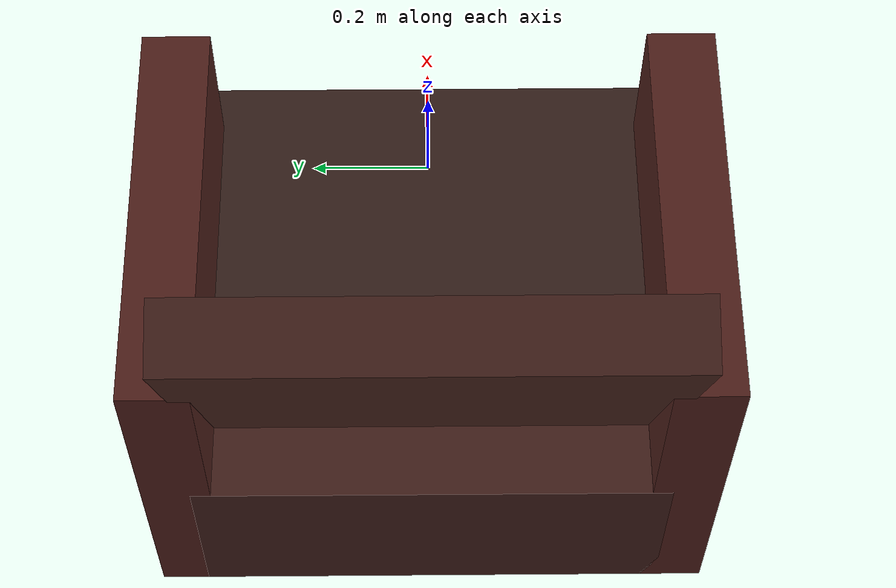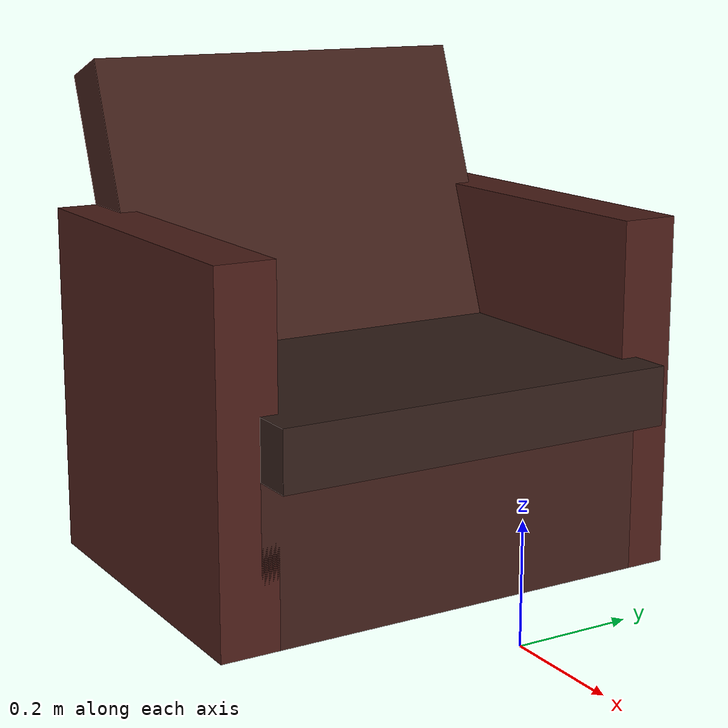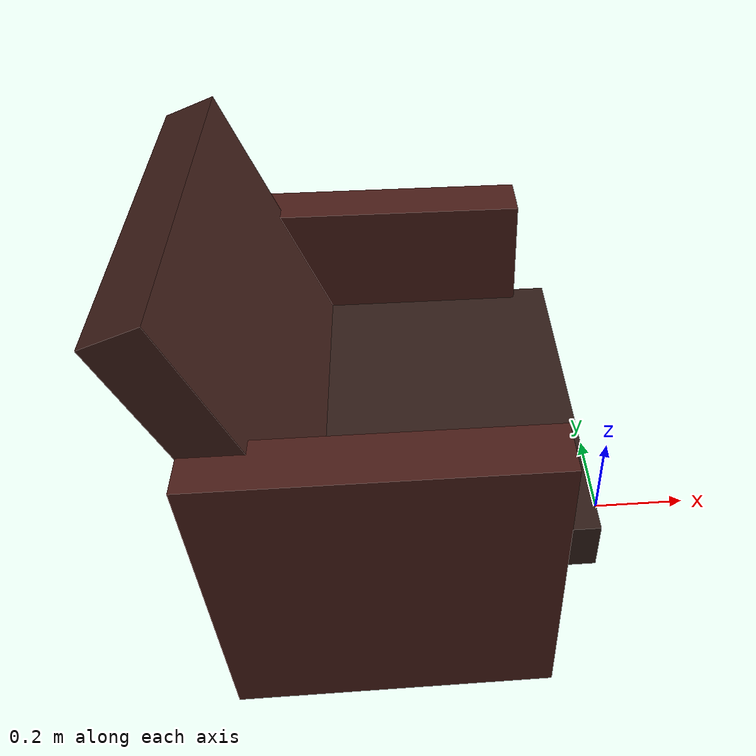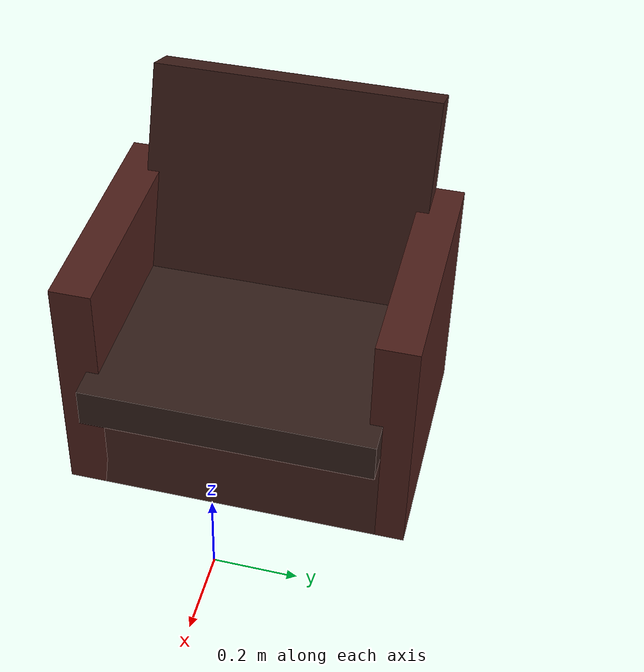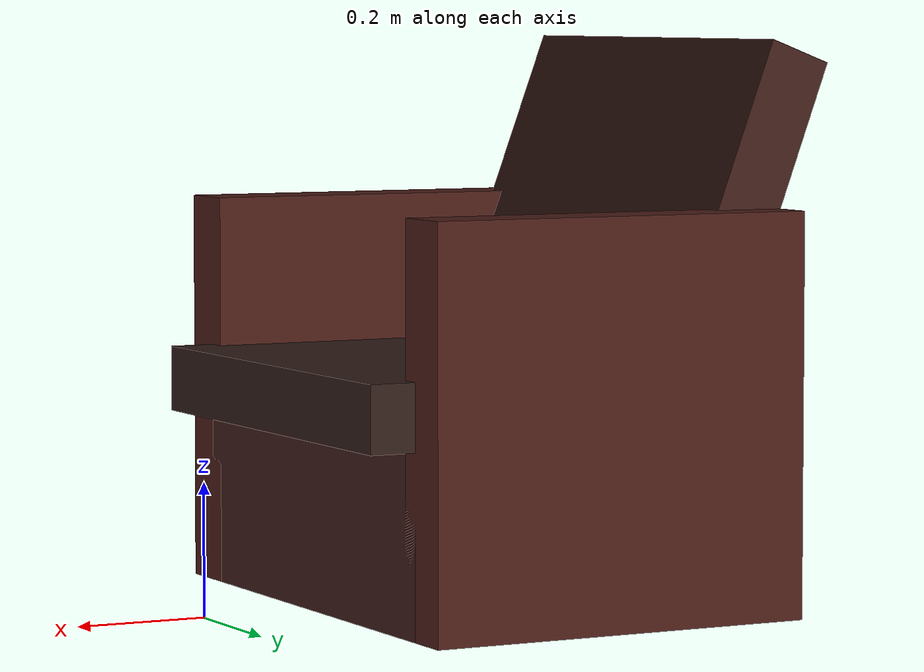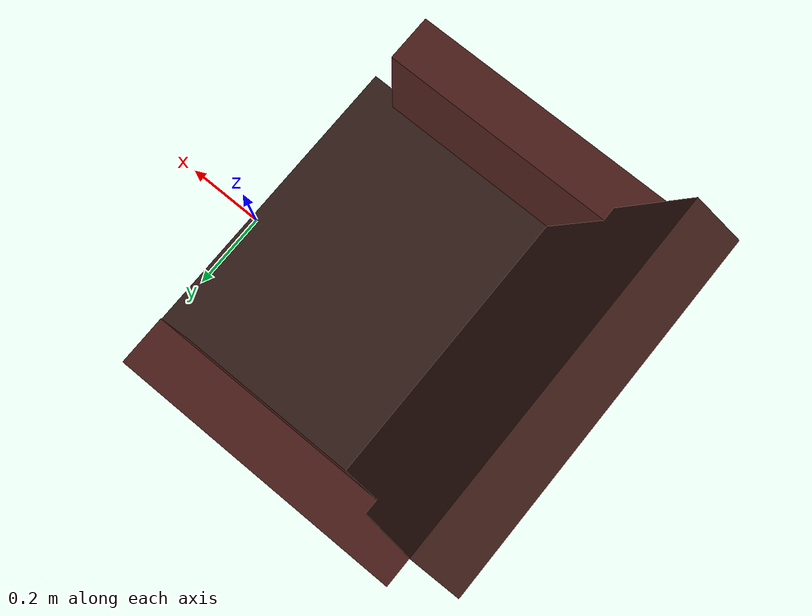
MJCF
<mujoco model="chair">
  <worldbody>
    <body name="chair" pos="-0.35 0 0.2" quat="1 0 0 0">
      <geom name="seat" type="box" pos="0 0 0.12" size=".25 .35 .05" mass="10." material="seat"/>
      <geom name="seat_base" type="box" pos="-0.12 0 -0.05" size=".30 .35 .15" mass="10." material="back"/>
      <geom name="back" type="box" pos="-0.35 0 0.35" size=".05 0.35 .3" mass="10." quat="0.984 0 -0.178 0" material="back"/>
      <geom name="chair_leg_1" type="box" pos="-0.12  0.37 0.1" size=".3 0.05 .3" mass="5." quat="1 0 0 0" material="legs"/>
      <geom name="chair_leg_2" type="box" pos="-0.12 -0.37 0.1" size=".3 0.05 .3" mass="5." quat="1 0 0 0" material="legs"/>
    </body>
  </worldbody>

  <asset>
    <material name="seat" rgba="0.2  0.12  0.1 1"/>
    <material name="back" rgba="0.25  0.12  0.1 1"/>
    <material name="legs" rgba="0.3  0.12  0.1 1"/>
  </asset>

  <keyframe>
    <key name="home"
    qpos="
      -0.37287191198624992
      -0.035799656267370063
      0.901782329396695
      0.99554782129661934
      0.056687379091741694
      -0.053461406362961005
      0.053037294359333076
        0.070185811555352723
      0.289324357645807
      0.044224327308818749
      -0.0761148147271991
      -0.40237919575174297
      -1.8031919617358665
      -1.7515298752693946
      -0.028762932182393394
      -0.021987347952217122
      0.17921942067944588
      0.093576107458969465
      -1.6758152358796854
      -1.4913876604463283
      0.0184475488429449
      -0.0646779532801539
      0.67751925007423042
      -0.82367980528920492
      -0.9484930293433399
      0.85978692033768167
      -0.8869255923345426
      -1.1492215277369582"/>

  </keyframe>

</mujoco>
